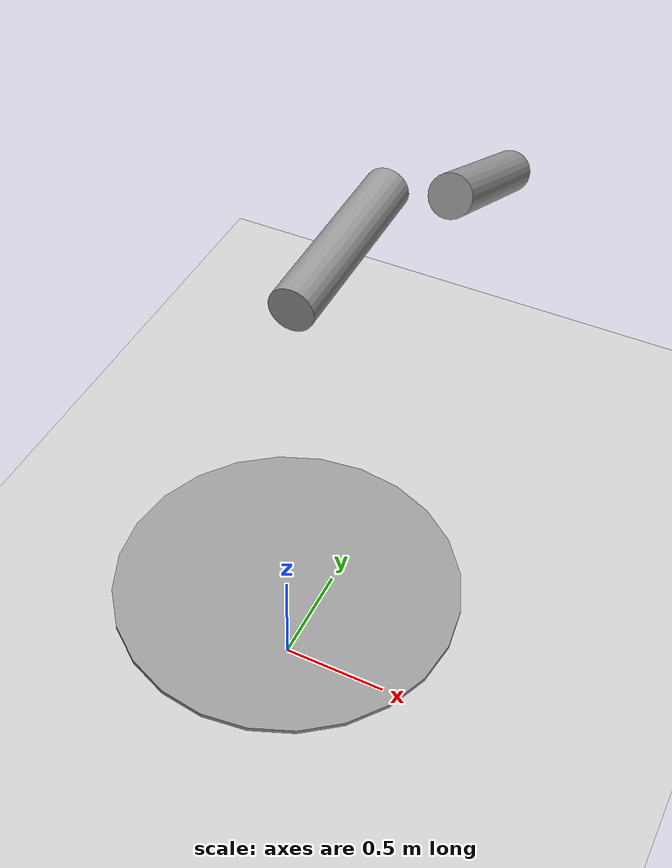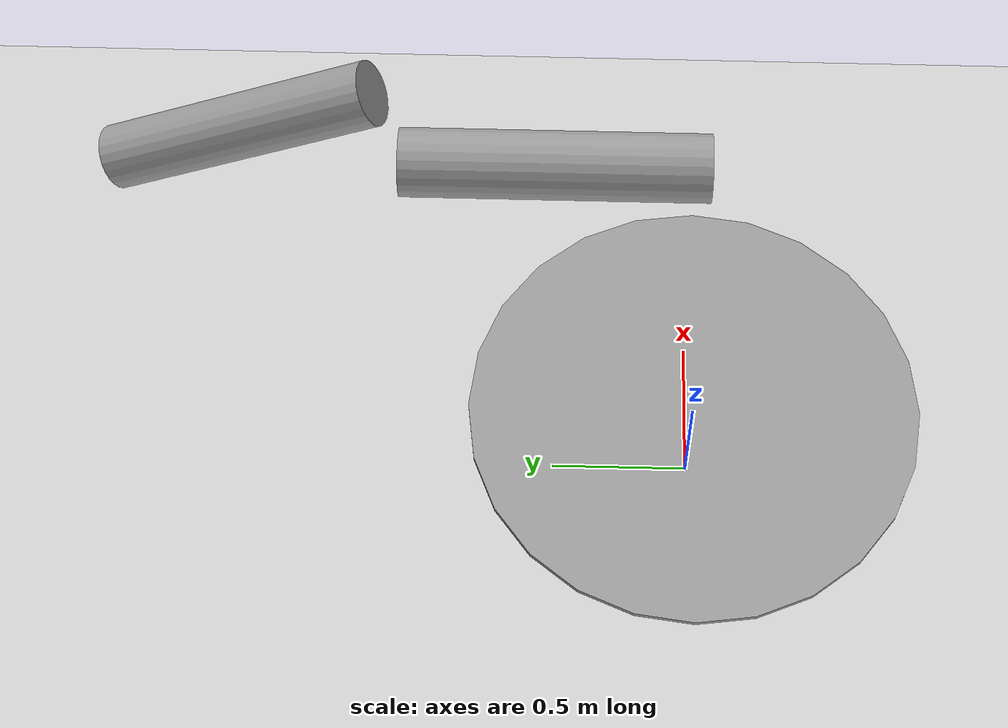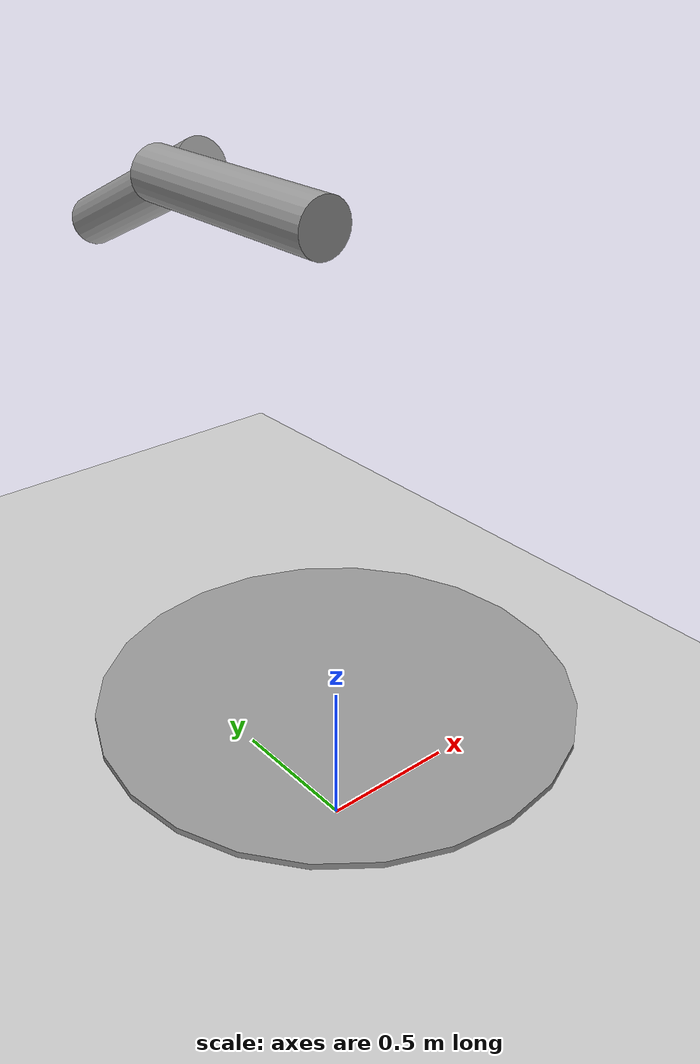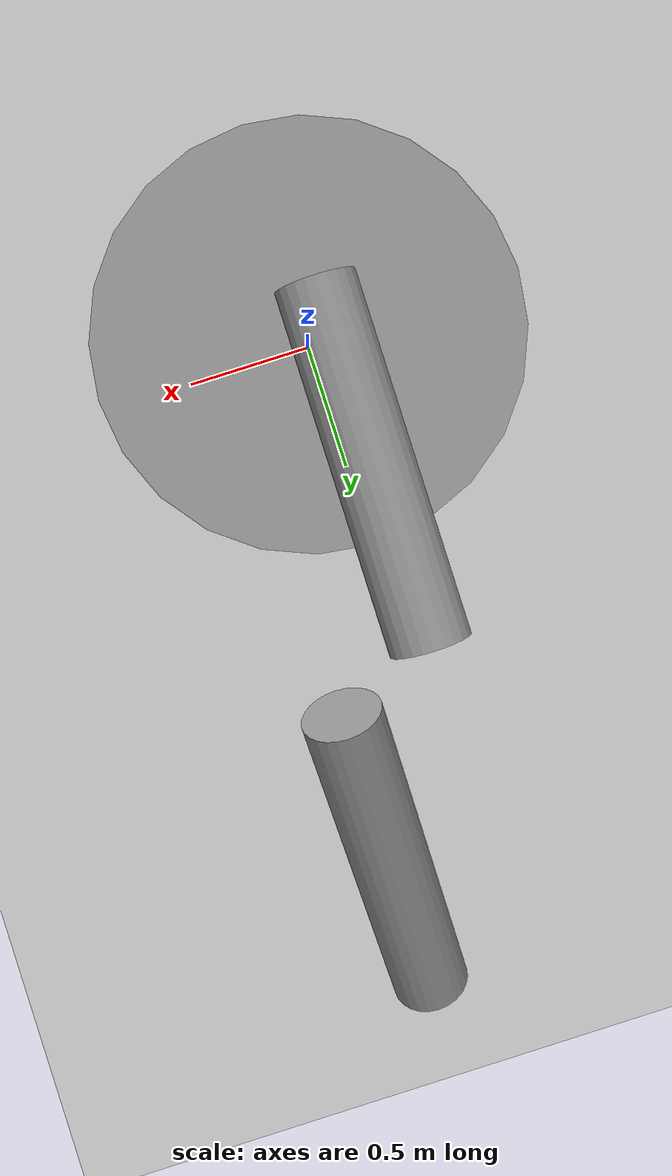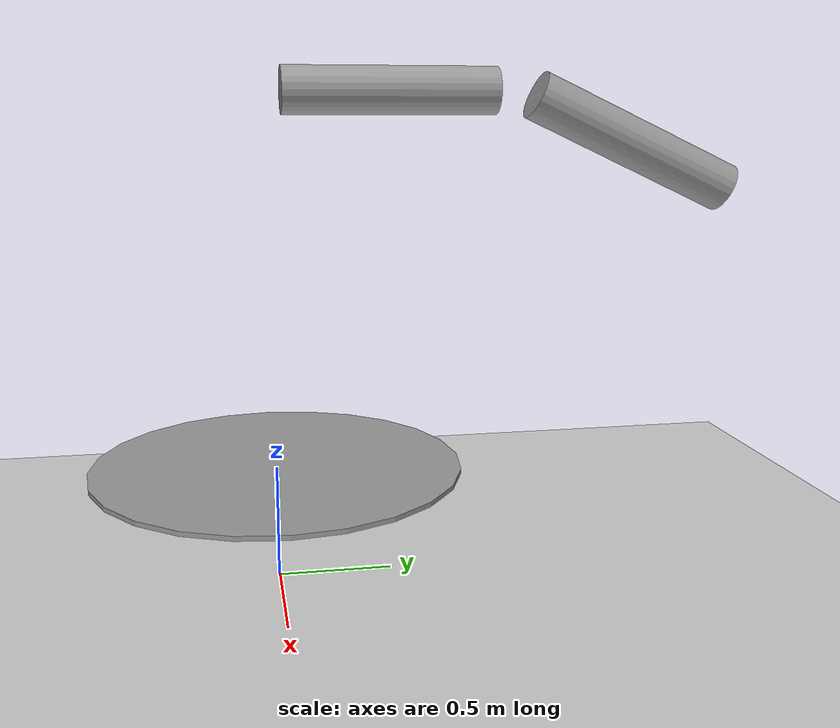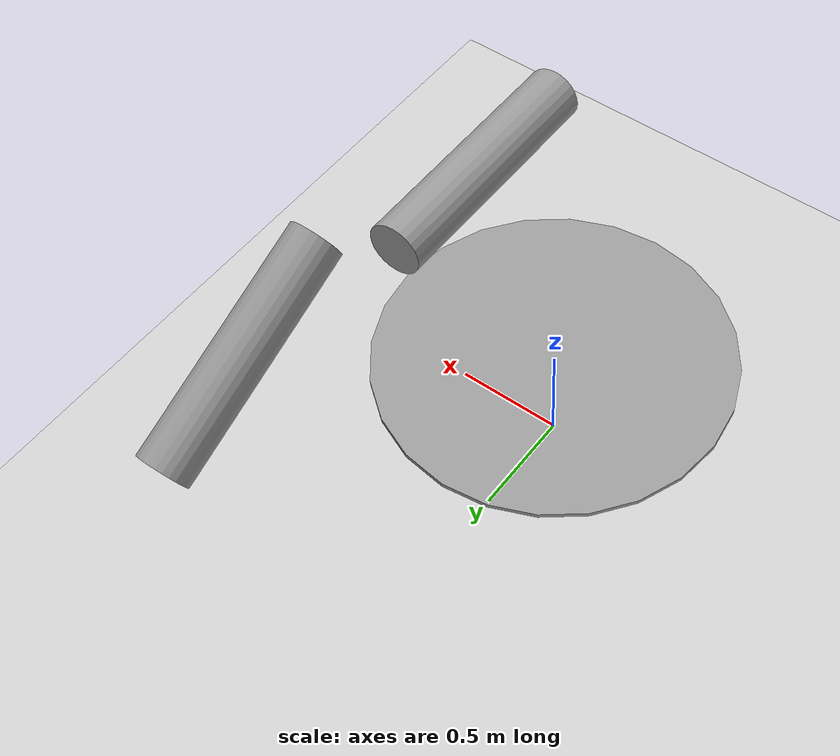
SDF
<?xml version="1.0" ?>
<sdf version="1.4">
    <world name="default">
        <include>
            <uri>model://sun</uri>
        </include>
        <include>
            <uri>model://ground_plane</uri>
        </include>
        <physics type="rtql8">
            <gravity>0 0 -10.0</gravity>
        </physics>
        <!-- 25.3kg total mass -->
        <model name="double_pendulum_with_base">
            <link name="base">
                <pose>0 0 0.5 0 0 0</pose>
                <inertial>
                    <mass>100</mass>
                </inertial>
                <visual name="vis_plate_on_ground">
                    <pose>0 0 0.01 0 0 0</pose>
                    <geometry>
                        <cylinder>
                            <radius>0.8</radius>
                            <length>0.02</length>
                        </cylinder>
                    </geometry>
                    <material>
                        <script>
                            <uri>file://media/materials/scripts/gazebo.material</uri>
                            <name>Gazebo/Grey</name>
                        </script>
                    </material>
                </visual>
                <collision name="col_plate_on_ground">
                    <pose>0 0 0.01 0 0 0</pose>
                    <geometry>
                        <cylinder>
                            <radius>0.8</radius>
                            <length>0.02</length>
                        </cylinder>
                    </geometry>
                </collision>
            </link>
            <!-- upper link, length 1, IC -90 degrees -->
            <link name="upper_link">
                <pose>0 0 2.1 -1.5708 0 0</pose>
                <self_collide>0</self_collide>
                <inertial>
                    <pose>0 0 0.5 0 0 0</pose>
                </inertial>
                <visual name="vis_cylinder">
                    <pose>0 0 0.5 0 0 0</pose>
                    <geometry>
                        <cylinder>
                            <radius>0.1</radius>
                            <length>0.9</length>
                        </cylinder>
                    </geometry>
                    <material>
                        <script>
                            <uri>file://media/materials/scripts/gazebo.material</uri>
                            <name>Gazebo/Grey</name>
                        </script>
                    </material>
                </visual>
                <collision name="col_cylinder">
                    <pose>0 0 0.5 0 0 0</pose>
                    <geometry>
                        <cylinder>
                            <radius>0.1</radius>
                            <length>0.9</length>
                        </cylinder>
                    </geometry>
                </collision>
            </link>
            <!-- lower link, length 1, IC ~-120 degrees more -->
            <link name="lower_link">
                <pose>0.25 1.0 2.1 -2 0 0</pose>
                <self_collide>0</self_collide>
                <inertial>
                    <pose>0 0 0.5 0 0 0</pose>
                </inertial>
                <visual name="vis_cylinder">
                    <pose>0 0 0.5 0 0 0</pose>
                    <geometry>
                        <cylinder>
                            <radius>0.1</radius>
                            <length>0.9</length>
                        </cylinder>
                    </geometry>
                    <material>
                        <script>
                            <uri>file://media/materials/scripts/gazebo.material</uri>
                            <name>Gazebo/Grey</name>
                        </script>
                    </material>
                </visual>
                <collision name="col_cylinder">
                    <pose>0 0 0.5 0 0 0</pose>
                    <geometry>
                        <cylinder>
                            <radius>0.1</radius>
                            <length>0.9</length>
                        </cylinder>
                    </geometry>
                </collision>
            </link>
            <joint name="joint01" type="revolute">
                <pose>0 0 0 0 0 0</pose>
                <axis>
                    <xyz>0 0 1</xyz>
                </axis>
                <parent>
                    <link_name>world</link_name>
                </parent>
                <child>
                    <link_name>base</link_name>
                </child>
            </joint>
            <!-- pin joint for upper link, at origin of upper link -->
            <joint name="upper_joint" type="revolute">
                <axis>
                    <xyz>1.0 0 0</xyz>
                </axis>
                <parent>
                    <link_name>base</link_name>
                </parent>
                <child>
                    <link_name>upper_link</link_name>
                </child>
            </joint>
            <!-- pin joint for lower link, at origin of child link -->
            <joint name="lower_joint" type="revolute">
                <axis>
                    <xyz>1.0 0 0</xyz>
                </axis>
                <parent>
                    <link_name>upper_link</link_name>
                </parent>
                <child>
                    <link_name>lower_link</link_name>
                </child>
            </joint>
        </model>
    </world>
</sdf>
